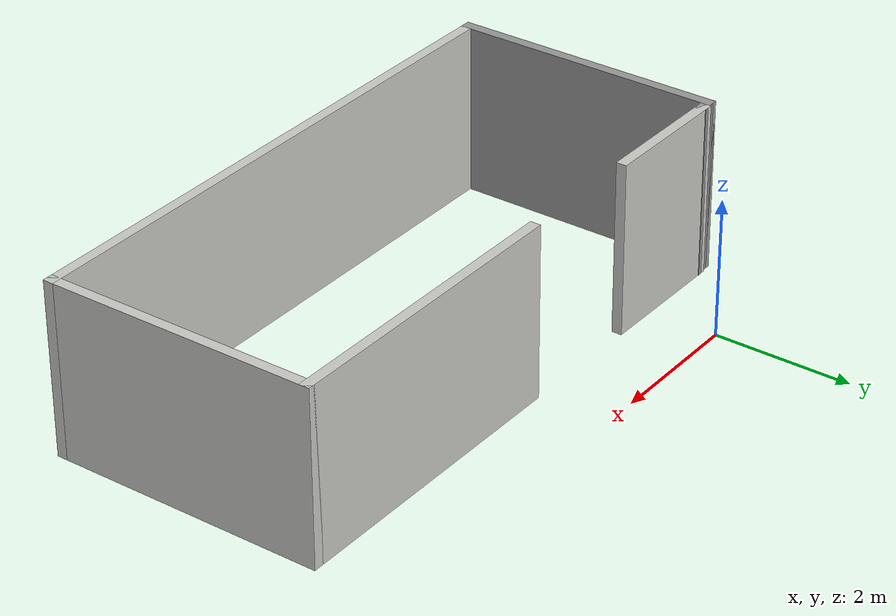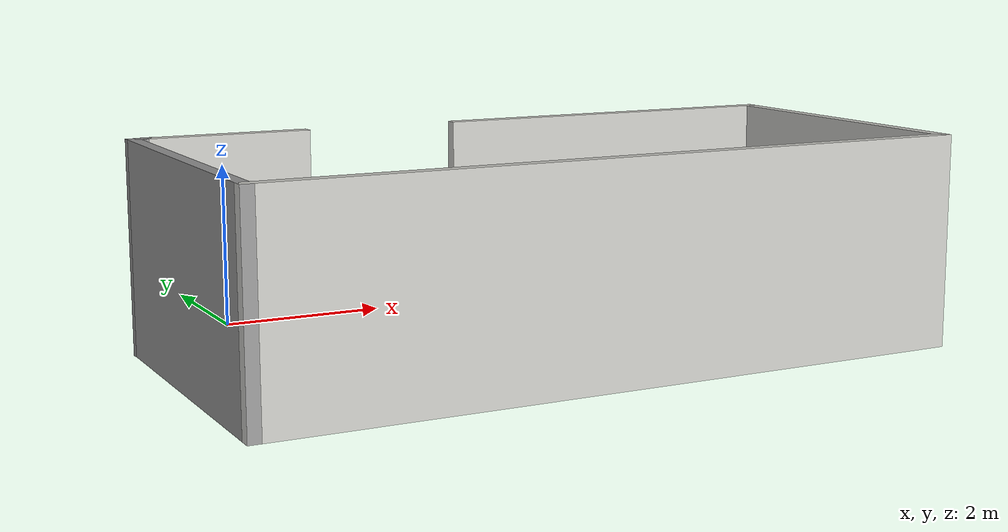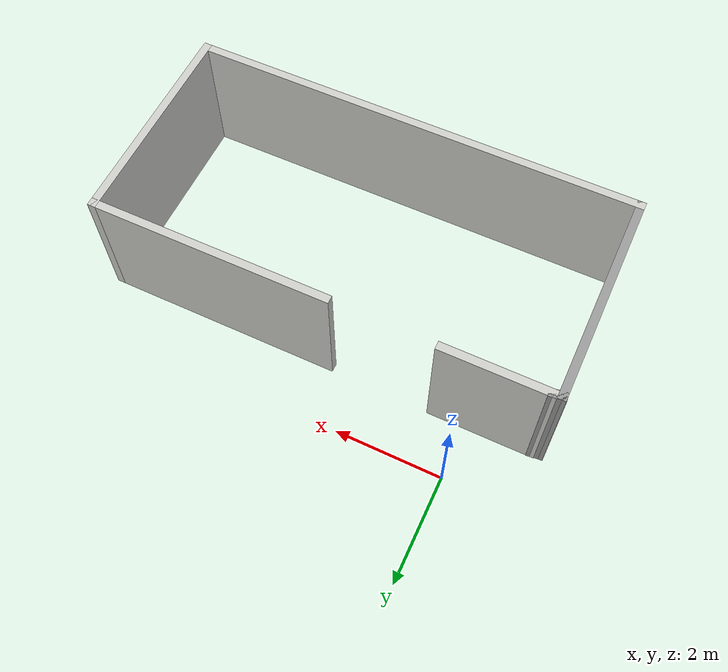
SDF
<?xml version='1.0'?>
<sdf version='1.7'>
  <model name='Room1'>
    <pose>2.81037 -2.5075 0 0 -0 0</pose>
    <link name='Wall_0'>
      <collision name='Wall_0_Collision'>
        <geometry>
          <box>
            <size>2 0.15 2.5</size>
          </box>
        </geometry>
        <pose>0 0 1.25 0 -0 0</pose>
      </collision>
      <visual name='Wall_0_Visual'>
        <pose>0 0 1.25 0 -0 0</pose>
        <geometry>
          <box>
            <size>2 0.15 2.5</size>
          </box>
        </geometry>
        <material>
          <script>
            <uri>file://media/materials/scripts/gazebo.material</uri>
            <name>Gazebo/CeilingTiled</name>
          </script>
          <ambient>1 1 1 1</ambient>
        </material>
        <meta>
          <layer>0</layer>
        </meta>
      </visual>
      <pose>-3.09537 1.4375 0 0 -0 3.14159</pose>
    </link>
    <link name='Wall_4'>
      <collision name='Wall_4_Collision'>
        <geometry>
          <box>
            <size>4.5 0.15 2.5</size>
          </box>
        </geometry>
        <pose>0 0 1.25 0 -0 0</pose>
      </collision>
      <visual name='Wall_4_Visual'>
        <pose>0 0 1.25 0 -0 0</pose>
        <geometry>
          <box>
            <size>4.5 0.15 2.5</size>
          </box>
        </geometry>
        <material>
          <script>
            <uri>file://media/materials/scripts/gazebo.material</uri>
            <name>Gazebo/CeilingTiled</name>
          </script>
          <ambient>1 1 1 1</ambient>
        </material>
        <meta>
          <layer>0</layer>
        </meta>
      </visual>
      <pose>2.00463 1.4175 0 0 -0 0</pose>
    </link>
    <link name='Wall_5'>
      <collision name='Wall_5_Collision'>
        <geometry>
          <box>
            <size>4 0.15 2.5</size>
          </box>
        </geometry>
        <pose>0 0 1.25 0 -0 0</pose>
      </collision>
      <visual name='Wall_5_Visual'>
        <pose>0 0 1.25 0 -0 0</pose>
        <geometry>
          <box>
            <size>4 0.15 2.5</size>
          </box>
        </geometry>
        <material>
          <script>
            <uri>file://media/materials/scripts/gazebo.material</uri>
            <name>Gazebo/CeilingTiled</name>
          </script>
          <ambient>1 1 1 1</ambient>
        </material>
        <meta>
          <layer>0</layer>
        </meta>
      </visual>
      <pose>4.17963 -0.5075 0 0 -0 -1.5708</pose>
    </link>
    <link name='Wall_6'>
      <collision name='Wall_6_Collision'>
        <geometry>
          <box>
            <size>8.5 0.15 2.5</size>
          </box>
        </geometry>
        <pose>0 0 1.25 0 -0 0</pose>
      </collision>
      <visual name='Wall_6_Visual'>
        <pose>0 0 1.25 0 -0 0</pose>
        <geometry>
          <box>
            <size>8.5 0.15 2.5</size>
          </box>
        </geometry>
        <material>
          <script>
            <uri>file://media/materials/scripts/gazebo.material</uri>
            <name>Gazebo/CeilingTiled</name>
          </script>
          <ambient>1 1 1 1</ambient>
        </material>
        <meta>
          <layer>0</layer>
        </meta>
      </visual>
      <pose>0.004627 -2.4325 0 0 -0 3.14159</pose>
    </link>
    <link name='Wall_7'>
      <collision name='Wall_7_Collision'>
        <geometry>
          <box>
            <size>4 0.15 2.5</size>
          </box>
        </geometry>
        <pose>0 0 1.25 0 -0 0</pose>
      </collision>
      <visual name='Wall_7_Visual'>
        <pose>0 0 1.25 0 -0 0</pose>
        <geometry>
          <box>
            <size>4 0.15 2.5</size>
          </box>
        </geometry>
        <material>
          <script>
            <uri>file://media/materials/scripts/gazebo.material</uri>
            <name>Gazebo/Grey</name>
          </script>
          <ambient>1 1 1 1</ambient>
        </material>
        <meta>
          <layer>0</layer>
        </meta>
      </visual>
      <pose>-4.17037 -0.5075 0 0 -0 1.5708</pose>
    </link>
    <link name='Wall_8'>
      <collision name='Wall_8_Collision'>
        <geometry>
          <box>
            <size>0.15 0.15 2.5</size>
          </box>
        </geometry>
        <pose>0 0 1.25 0 -0 0</pose>
      </collision>
      <visual name='Wall_8_Visual'>
        <pose>0 0 1.25 0 -0 0</pose>
        <geometry>
          <box>
            <size>0.15 0.15 2.5</size>
          </box>
        </geometry>
        <material>
          <script>
            <uri>file://media/materials/scripts/gazebo.material</uri>
            <name>Gazebo/Grey</name>
          </script>
          <ambient>1 1 1 1</ambient>
        </material>
        <meta>
          <layer>0</layer>
        </meta>
      </visual>
      <pose>-4.17037 1.4175 0 0 -0 0</pose>
    </link>
    <link name='Wall_9'>
      <collision name='Wall_9_Collision'>
        <geometry>
          <box>
            <size>0.301327 0.15 2.5</size>
          </box>
        </geometry>
        <pose>0 0 1.25 0 -0 0</pose>
      </collision>
      <visual name='Wall_9_Visual'>
        <pose>0 0 1.25 0 -0 0</pose>
        <geometry>
          <box>
            <size>0.301327 0.15 2.5</size>
          </box>
        </geometry>
        <material>
          <script>
            <uri>file://media/materials/scripts/gazebo.material</uri>
            <name>Gazebo/Grey</name>
          </script>
          <ambient>1 1 1 1</ambient>
        </material>
        <meta>
          <layer>0</layer>
        </meta>
      </visual>
      <pose>-4.09537 1.4275 0 0 -0 0.132552</pose>
    </link>
    <static>1</static>
  </model>
</sdf>
